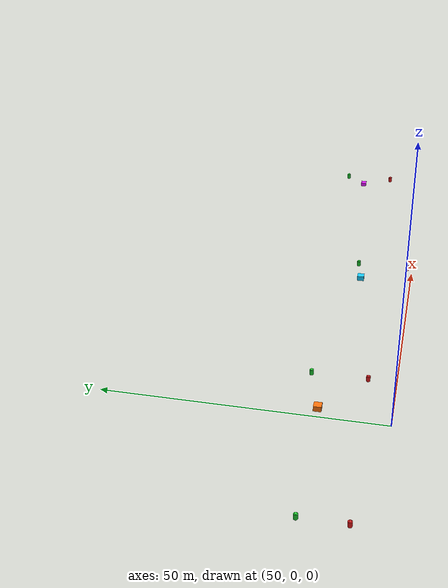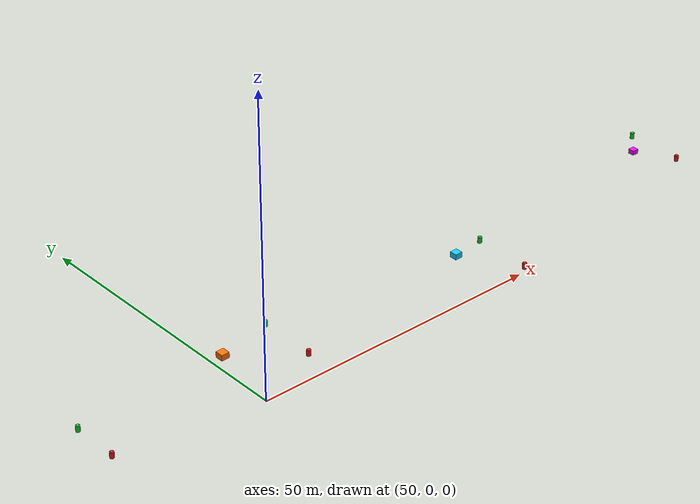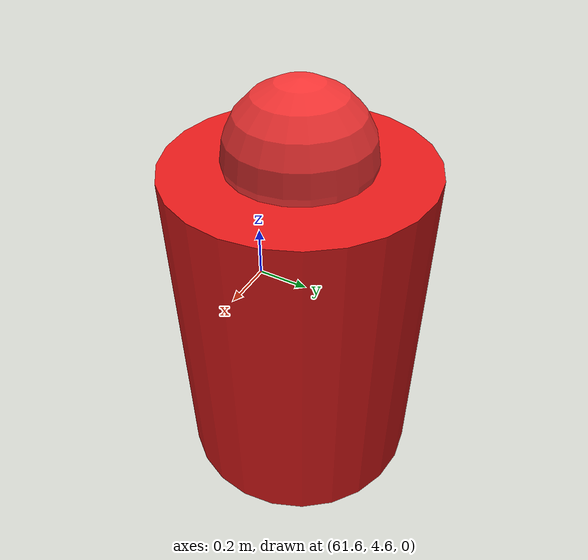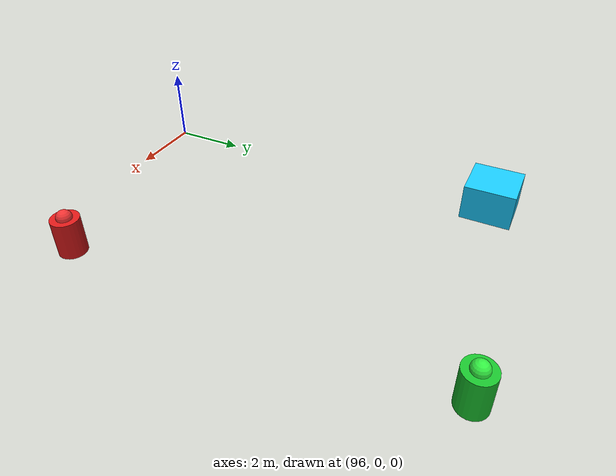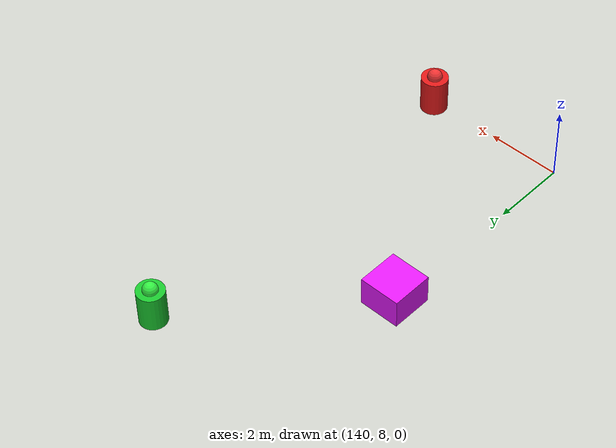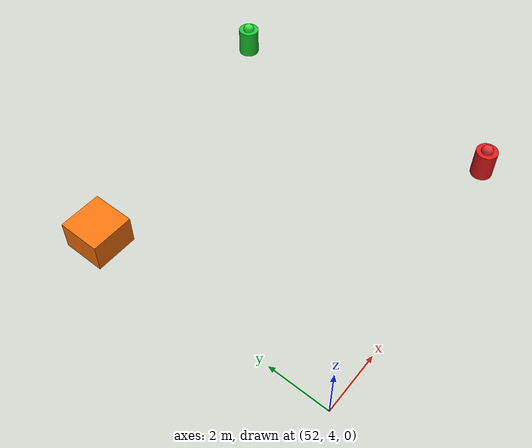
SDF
<sdf version="1.9">
 <world name="vrx_vln_dynamic_challenge">
  <physics name="50ms" type="dart">
   <max_step_size>0.05</max_step_size>
   <real_time_factor>1.0</real_time_factor>
  </physics>
  <plugin filename="gz-sim-physics-system" name="gz::sim::systems::Physics"/>
  <plugin filename="gz-sim-user-commands-system" name="gz::sim::systems::UserCommands"/>
  <plugin filename="gz-sim-sensors-system" name="gz::sim::systems::Sensors">
   <render_engine>ogre2</render_engine>
   <disable_on_drained_battery>true</disable_on_drained_battery>
  </plugin>
  <plugin filename="gz-sim-imu-system" name="gz::sim::systems::Imu"/>
  <plugin filename="gz-sim-magnetometer-system" name="gz::sim::systems::Magnetometer"/>
  <plugin filename="gz-sim-forcetorque-system" name="gz::sim::systems::ForceTorque"/>
  <plugin filename="gz-sim-scene-broadcaster-system" name="gz::sim::systems::SceneBroadcaster"/>
  <plugin filename="gz-sim-contact-system" name="gz::sim::systems::Contact"/>
  <plugin filename="gz-sim-navsat-system" name="gz::sim::systems::NavSat"/>
  <scene><grid>true</grid><ambient>1.0 1.0 1.0</ambient><background>0.65 0.72 0.82</background></scene>
  <spherical_coordinates>
   <surface_model>EARTH_WGS84</surface_model>
   <world_frame_orientation>ENU</world_frame_orientation>
   <latitude_deg>-33.724223</latitude_deg>
   <longitude_deg>150.679736</longitude_deg>
   <elevation>0.0</elevation>
   <heading_deg>0.0</heading_deg>
  </spherical_coordinates>
  <light type="directional" name="sun">
   <pose>0 0 10 0 0 0</pose>
   <diffuse>0.8 0.8 0.8 1</diffuse>
   <specular>0.2 0.2 0.2 1</specular>
   <attenuation>
    <range>1000</range>
    <constant>0.9</constant>
    <linear>0.01</linear>
    <quadratic>0.001</quadratic>
   </attenuation>
   <direction>-0.5 0.1 -0.9</direction>
  </light>
  <model name="red_buoy">
   <static>true</static>
   <pose>26.0 4.0 0.3 0 0 0</pose>
   <link name="base_link">
    <collision name="collision_hull">
     <geometry><cylinder><radius>0.36</radius><length>1.0</length></cylinder></geometry>
    </collision>
    <visual name="visual_hull">
     <geometry><cylinder><radius>0.36</radius><length>1.0</length></cylinder></geometry>
     <material><ambient>0.88 0.10 0.10 1.0</ambient><diffuse>0.88 0.10 0.10 1.0</diffuse></material>
    </visual>
    <visual name="visual_top">
     <pose>0 0 0.52 0 0 0</pose>
     <geometry><sphere><radius>0.2</radius></sphere></geometry>
     <material><ambient>0.95 0.20 0.20 1.0</ambient><diffuse>0.95 0.20 0.20 1.0</diffuse></material>
    </visual>
   </link>
  </model>
  <model name="green_buoy">
   <static>true</static>
   <pose>26.0 12.0 0.3 0 0 0</pose>
   <link name="base_link">
    <collision name="collision_hull">
     <geometry><cylinder><radius>0.36</radius><length>1.0</length></cylinder></geometry>
    </collision>
    <visual name="visual_hull">
     <geometry><cylinder><radius>0.36</radius><length>1.0</length></cylinder></geometry>
     <material><ambient>0.10 0.78 0.18 1.0</ambient><diffuse>0.10 0.78 0.18 1.0</diffuse></material>
    </visual>
    <visual name="visual_top">
     <pose>0 0 0.52 0 0 0</pose>
     <geometry><sphere><radius>0.2</radius></sphere></geometry>
     <material><ambient>0.20 0.95 0.26 1.0</ambient><diffuse>0.20 0.95 0.26 1.0</diffuse></material>
    </visual>
   </link>
  </model>
  <model name="red_buoy_mid">
   <static>true</static>
   <pose>62.0 5.0 0.3 0 0 0</pose>
   <link name="base_link">
    <collision name="collision_hull">
     <geometry><cylinder><radius>0.36</radius><length>1.0</length></cylinder></geometry>
    </collision>
    <visual name="visual_hull">
     <geometry><cylinder><radius>0.36</radius><length>1.0</length></cylinder></geometry>
     <material><ambient>0.88 0.10 0.10 1.0</ambient><diffuse>0.88 0.10 0.10 1.0</diffuse></material>
    </visual>
    <visual name="visual_top">
     <pose>0 0 0.52 0 0 0</pose>
     <geometry><sphere><radius>0.2</radius></sphere></geometry>
     <material><ambient>0.95 0.20 0.20 1.0</ambient><diffuse>0.95 0.20 0.20 1.0</diffuse></material>
    </visual>
   </link>
  </model>
  <model name="green_buoy_mid">
   <static>true</static>
   <pose>62.0 15.0 0.3 0 0 0</pose>
   <link name="base_link">
    <collision name="collision_hull">
     <geometry><cylinder><radius>0.36</radius><length>1.0</length></cylinder></geometry>
    </collision>
    <visual name="visual_hull">
     <geometry><cylinder><radius>0.36</radius><length>1.0</length></cylinder></geometry>
     <material><ambient>0.10 0.78 0.18 1.0</ambient><diffuse>0.10 0.78 0.18 1.0</diffuse></material>
    </visual>
    <visual name="visual_top">
     <pose>0 0 0.52 0 0 0</pose>
     <geometry><sphere><radius>0.2</radius></sphere></geometry>
     <material><ambient>0.20 0.95 0.26 1.0</ambient><diffuse>0.20 0.95 0.26 1.0</diffuse></material>
    </visual>
   </link>
  </model>
  <model name="red_buoy_far">
   <static>true</static>
   <pose>102.0 1.0 0.3 0 0 0</pose>
   <link name="base_link">
    <collision name="collision_hull">
     <geometry><cylinder><radius>0.36</radius><length>1.0</length></cylinder></geometry>
    </collision>
    <visual name="visual_hull">
     <geometry><cylinder><radius>0.36</radius><length>1.0</length></cylinder></geometry>
     <material><ambient>0.88 0.10 0.10 1.0</ambient><diffuse>0.88 0.10 0.10 1.0</diffuse></material>
    </visual>
    <visual name="visual_top">
     <pose>0 0 0.52 0 0 0</pose>
     <geometry><sphere><radius>0.2</radius></sphere></geometry>
     <material><ambient>0.95 0.20 0.20 1.0</ambient><diffuse>0.95 0.20 0.20 1.0</diffuse></material>
    </visual>
   </link>
  </model>
  <model name="green_buoy_far">
   <static>true</static>
   <pose>102.0 11.0 0.3 0 0 0</pose>
   <link name="base_link">
    <collision name="collision_hull">
     <geometry><cylinder><radius>0.36</radius><length>1.0</length></cylinder></geometry>
    </collision>
    <visual name="visual_hull">
     <geometry><cylinder><radius>0.36</radius><length>1.0</length></cylinder></geometry>
     <material><ambient>0.10 0.78 0.18 1.0</ambient><diffuse>0.10 0.78 0.18 1.0</diffuse></material>
    </visual>
    <visual name="visual_top">
     <pose>0 0 0.52 0 0 0</pose>
     <geometry><sphere><radius>0.2</radius></sphere></geometry>
     <material><ambient>0.20 0.95 0.26 1.0</ambient><diffuse>0.20 0.95 0.26 1.0</diffuse></material>
    </visual>
   </link>
  </model>
  <model name="red_buoy_final">
   <static>true</static>
   <pose>144.0 8.0 0.3 0 0 0</pose>
   <link name="base_link">
    <collision name="collision_hull">
     <geometry><cylinder><radius>0.36</radius><length>1.0</length></cylinder></geometry>
    </collision>
    <visual name="visual_hull">
     <geometry><cylinder><radius>0.36</radius><length>1.0</length></cylinder></geometry>
     <material><ambient>0.88 0.10 0.10 1.0</ambient><diffuse>0.88 0.10 0.10 1.0</diffuse></material>
    </visual>
    <visual name="visual_top">
     <pose>0 0 0.52 0 0 0</pose>
     <geometry><sphere><radius>0.2</radius></sphere></geometry>
     <material><ambient>0.95 0.20 0.20 1.0</ambient><diffuse>0.95 0.20 0.20 1.0</diffuse></material>
    </visual>
   </link>
  </model>
  <model name="green_buoy_final">
   <static>true</static>
   <pose>144.0 18.0 0.3 0 0 0</pose>
   <link name="base_link">
    <collision name="collision_hull">
     <geometry><cylinder><radius>0.36</radius><length>1.0</length></cylinder></geometry>
    </collision>
    <visual name="visual_hull">
     <geometry><cylinder><radius>0.36</radius><length>1.0</length></cylinder></geometry>
     <material><ambient>0.10 0.78 0.18 1.0</ambient><diffuse>0.10 0.78 0.18 1.0</diffuse></material>
    </visual>
    <visual name="visual_top">
     <pose>0 0 0.52 0 0 0</pose>
     <geometry><sphere><radius>0.2</radius></sphere></geometry>
     <material><ambient>0.20 0.95 0.26 1.0</ambient><diffuse>0.20 0.95 0.26 1.0</diffuse></material>
    </visual>
   </link>
  </model>
  <model name="dyn_obstacle_cross_1">
   <static>false</static>
   <pose>52.0 12.5 0.55 0 0 0</pose>
   <link name="link">
    <gravity>false</gravity>
    <inertial><mass>20.0</mass><inertia><ixx>3.0</ixx><iyy>3.0</iyy><izz>3.0</izz></inertia></inertial>
    <collision name="collision"><geometry><box><size>1.4 1.4 1.0</size></box></geometry></collision>
    <visual name="visual">
     <geometry><box><size>1.4 1.4 1.0</size></box></geometry>
     <material><ambient>1.0 0.45 0.05 1.0</ambient><diffuse>1.0 0.45 0.05 1.0</diffuse></material>
    </visual>
   </link>
   <plugin filename="gz-sim-trajectory-follower-system" name="gz::sim::systems::TrajectoryFollower">
    <link_name>link</link_name>
    <loop>true</loop>
    <force>7</force>
    <torque>1.0</torque>
    <waypoints><waypoint>52.0 18.0</waypoint><waypoint>52.0 7.0</waypoint></waypoints>
   </plugin>
  </model>
  <model name="dyn_obstacle_cross_2">
   <static>false</static>
   <pose>96.0 10.0 0.55 0 0 0</pose>
   <link name="link">
    <gravity>false</gravity>
    <inertial><mass>16.0</mass><inertia><ixx>2.5</ixx><iyy>2.5</iyy><izz>2.5</izz></inertia></inertial>
    <collision name="collision"><geometry><box><size>1.3 1.3 0.95</size></box></geometry></collision>
    <visual name="visual">
     <geometry><box><size>1.3 1.3 0.95</size></box></geometry>
     <material><ambient>0.1 0.8 1.0 1.0</ambient><diffuse>0.1 0.8 1.0 1.0</diffuse></material>
    </visual>
   </link>
   <plugin filename="gz-sim-trajectory-follower-system" name="gz::sim::systems::TrajectoryFollower">
    <link_name>link</link_name>
    <loop>true</loop>
    <force>7</force>
    <torque>1.0</torque>
    <waypoints><waypoint>96.0 4.0</waypoint><waypoint>96.0 16.0</waypoint></waypoints>
   </plugin>
  </model>
  <model name="dyn_obstacle_orbit_1">
   <static>false</static>
   <pose>140.0 14.0 0.55 0 0 0</pose>
   <link name="link">
    <gravity>false</gravity>
    <inertial><mass>12.0</mass><inertia><ixx>1.8</ixx><iyy>1.8</iyy><izz>1.8</izz></inertia></inertial>
    <collision name="collision"><geometry><box><size>1.1 1.1 0.8</size></box></geometry></collision>
    <visual name="visual">
     <geometry><box><size>1.1 1.1 0.8</size></box></geometry>
     <material><ambient>0.9 0.1 1.0 1.0</ambient><diffuse>0.9 0.1 1.0 1.0</diffuse></material>
    </visual>
   </link>
   <plugin filename="gz-sim-trajectory-follower-system" name="gz::sim::systems::TrajectoryFollower">
    <link_name>link</link_name>
    <loop>true</loop>
    <force>7</force>
    <torque>1.0</torque>
    <waypoints>
     <waypoint>143.0 14.0</waypoint>
     <waypoint>140.0 17.0</waypoint>
     <waypoint>137.0 14.0</waypoint>
     <waypoint>140.0 11.0</waypoint>
    </waypoints>
   </plugin>
  </model>
  <plugin filename="libUSVWind.so" name="vrx::USVWind">
   <wind_obj>
    <name>wamv</name>
    <link_name>wamv/base_link</link_name>
    <coeff_vector>.5 .5 .33</coeff_vector>
   </wind_obj>
   <wind_direction>180</wind_direction>
   <wind_mean_velocity>0.5</wind_mean_velocity>
   <var_wind_gain_constants>0</var_wind_gain_constants>
   <var_wind_time_constants>2</var_wind_time_constants>
   <random_seed>10</random_seed>
   <update_rate>10</update_rate>
   <topic_wind_speed>/vrx/debug/wind/speed</topic_wind_speed>
   <topic_wind_direction>/vrx/debug/wind/direction</topic_wind_direction>
  </plugin>
  <plugin filename="libPublisherPlugin.so" name="vrx::PublisherPlugin">
   <message type="gz.msgs.Param" topic="/vrx/wavefield/parameters" every="2.0">params {
          key: "direction"
          value {
            type: DOUBLE
            double_value: 0.25
          }
        }
        params {
          key: "gain"
          value {
            type: DOUBLE
            double_value: 0.05
          }
        }
        params {
          key: "period"
          value {
            type: DOUBLE
            double_value: 5.0
          }
        }
        params {
          key: "steepness"
          value {
            type: DOUBLE
            double_value: 0.03
          }
        }</message>
  </plugin>
 </world>
</sdf>
